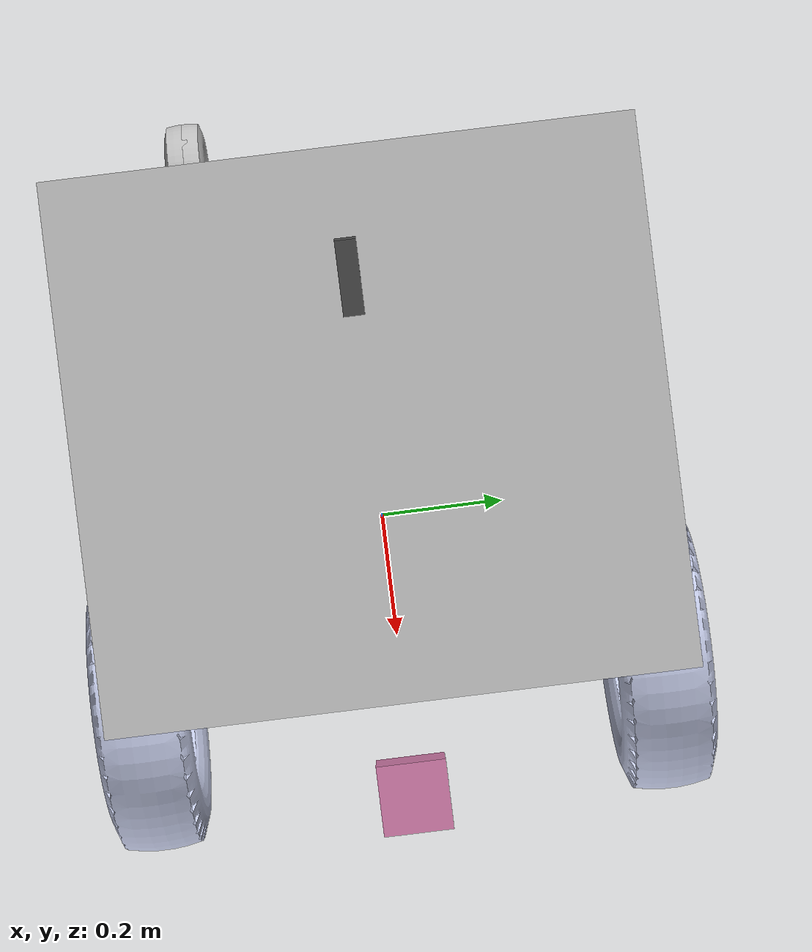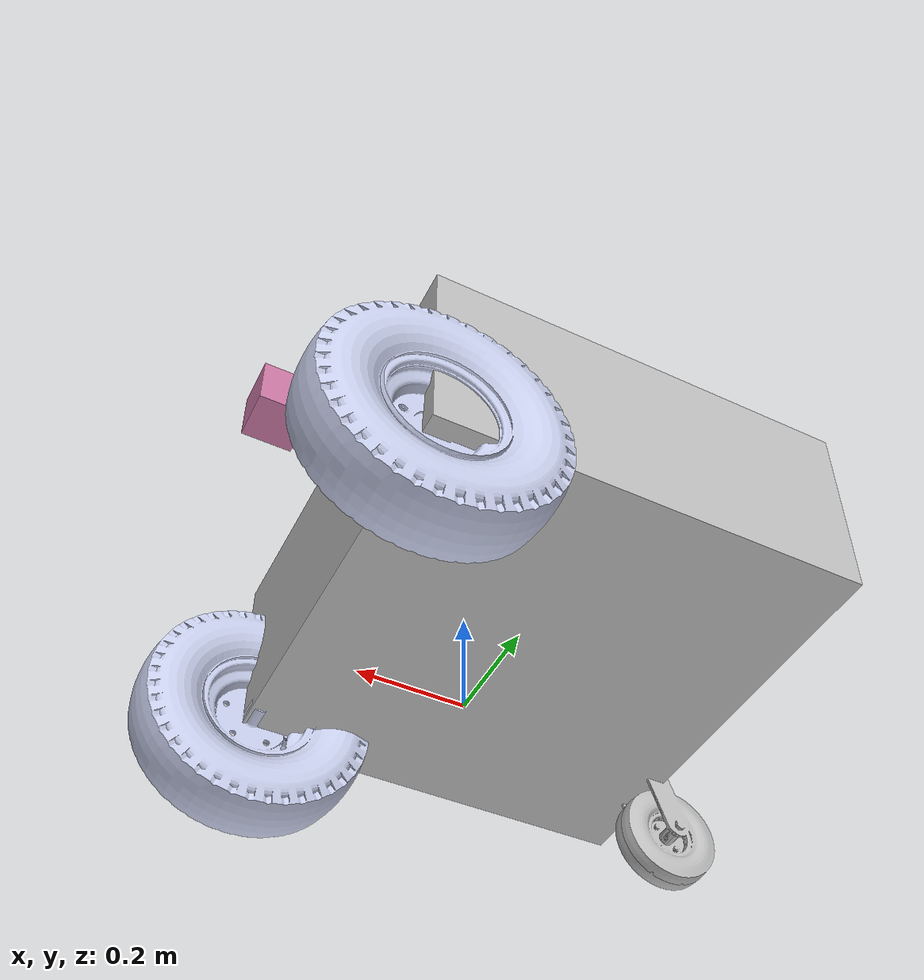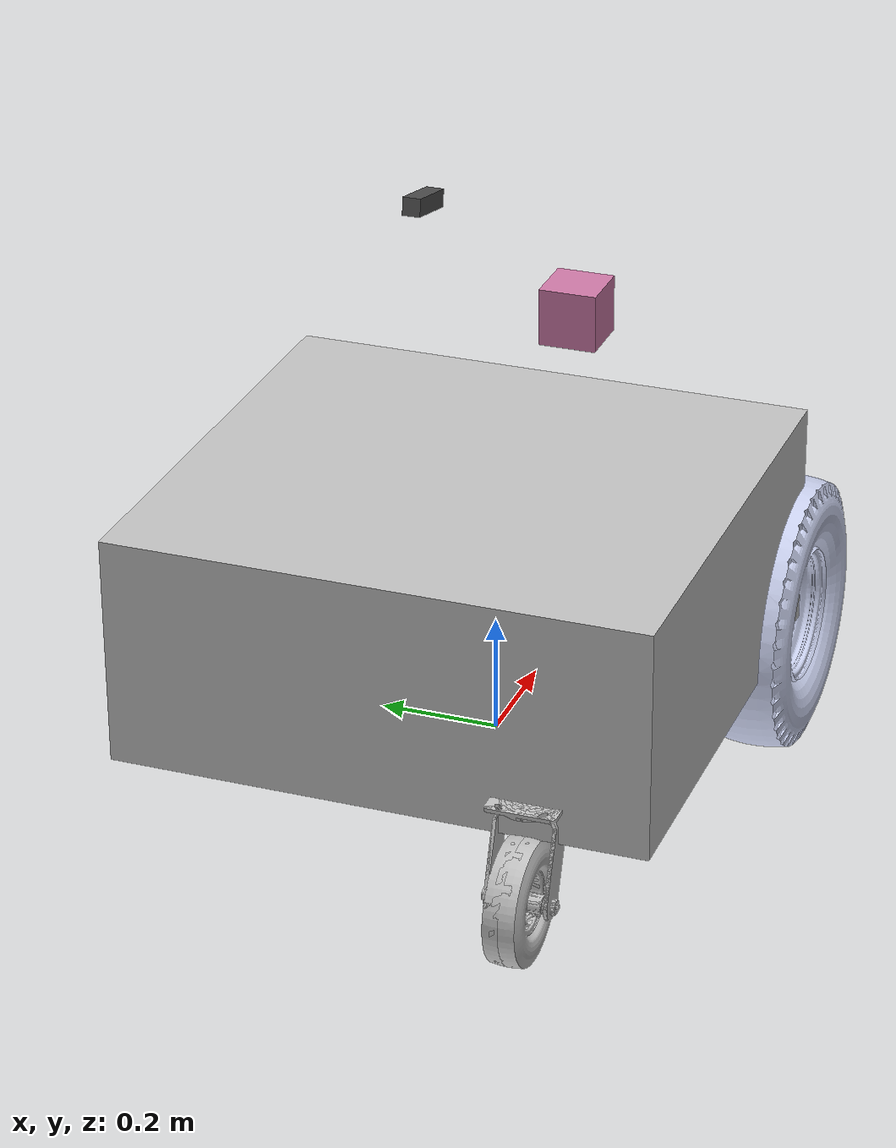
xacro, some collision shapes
<?xml version="1.0" encoding="utf-8"?>
<robot xmlns:xacro="http://www.ros.org/wiki/xacro" name="r3_robot">
  <!-- file:// + $(find ...) so Gazebo resolves visuals when spawning URDF (package:// is unreliable). -->
  <xacro:property name="mesh_dir" value="file://$(find orange_description)/URDF/meshes"/>
  <!-- Wheel geometry for diff_drive (meters); center-to-center along y, tire diameter -->
  <xacro:property name="wheel_sep" value="0.8105"/>
  <xacro:property name="wheel_diam" value="0.44"/>

  <link name="base_footprint"/>
  <joint name="base_joint" type="fixed">
    <parent link="base_footprint"/>
    <child link="base_link"/>
    <!-- Ground ~ wheel bottom; wheel z -0.074, r=0.22; raise base_link ~0.29 m above footprint -->
    <origin xyz="0 0 0.24" rpy="0 0 0"/>
  </joint>

  <link name="base_link">
    <inertial>
      <origin xyz="0.0374161775948693 -0.00127430901164387 0.0470608642145947" rpy="0 0 0"/>
      <mass value="81.1401446778268"/>
      <inertia ixx="0.728632085236706" ixy="1.32350754415025E-05" ixz="-0.0224859617907878"
        iyy="1.14289496966326" iyz="-7.48148338622692E-05" izz="1.53133782528775"/>
    </inertial>
    <visual>
      <origin xyz="0 0 0" rpy="0 0 0"/>
      <geometry>
        <mesh filename="${mesh_dir}/base_link.STL"/>
      </geometry>
      <material name="chassis_grey">
        <color rgba="0.752941176470588 0.752941176470588 0.752941176470588 1"/>
      </material>
    </visual>
    <collision>
      <origin xyz="-0.136 0 0.10" rpy="0 0 0"/>
      <geometry>
        <box size="0.82 0.88 0.38"/>
      </geometry>
    </collision>
  </link>

  <link name="wheel_right">
    <inertial>
      <origin xyz="1.798E-05 -0.003577 -1.798E-05" rpy="0 0 0"/>
      <mass value="6.0074"/>
      <inertia ixx="0.11314" ixy="-3.6258E-08" ixz="8.1856E-07" iyy="0.20566" iyz="3.6267E-08" izz="0.11314"/>
    </inertial>
    <visual>
      <origin xyz="0 0 0" rpy="0 0 0"/>
      <geometry>
        <mesh filename="${mesh_dir}/wheel_right.STL"/>
      </geometry>
      <material name="wheel_blue">
        <color rgba="0.79216 0.81961 0.93333 1"/>
      </material>
    </visual>
    <collision>
      <origin xyz="0 0 0" rpy="1.5707963267948966 0 0"/>
      <geometry>
        <cylinder radius="0.22" length="0.10"/>
      </geometry>
    </collision>
  </link>
  <joint name="rightWheel" type="continuous">
    <origin xyz="0.25591 0.40526 -0.07445" rpy="0 0 0"/>
    <parent link="base_link"/>
    <child link="wheel_right"/>
    <axis xyz="0 1 0"/>
    <limit effort="10" velocity="10"/>
    <dynamics damping="0.5" friction="0.5"/>
  </joint>

  <link name="wheel_left">
    <inertial>
      <origin xyz="-1.798E-05 0.003577 -1.798E-05" rpy="0 0 0"/>
      <mass value="6.0074"/>
      <inertia ixx="0.11314" ixy="-3.6258E-08" ixz="-8.1856E-07" iyy="0.20566" iyz="-3.6267E-08" izz="0.11314"/>
    </inertial>
    <visual>
      <origin xyz="0 0 0" rpy="0 0 0"/>
      <geometry>
        <mesh filename="${mesh_dir}/wheel_left.STL"/>
      </geometry>
      <material name="wheel_blue_l">
        <color rgba="0.79216 0.81961 0.93333 1"/>
      </material>
    </visual>
    <collision>
      <origin xyz="0 0 0" rpy="1.5707963267948966 0 0"/>
      <geometry>
        <cylinder radius="0.22" length="0.10"/>
      </geometry>
    </collision>
  </link>
  <joint name="leftWheel" type="continuous">
    <origin xyz="0.25591 -0.40525 -0.07445" rpy="0 0 0"/>
    <parent link="base_link"/>
    <child link="wheel_left"/>
    <axis xyz="0 -1 0"/>
    <limit effort="10" velocity="10"/>
    <dynamics damping="0.5" friction="0.5"/>
  </joint>

  <link name="right_caster">
    <inertial>
      <origin xyz="-0.039652 -5.8101E-05 -0.13418" rpy="0 0 0"/>
      <mass value="1.8501"/>
      <inertia ixx="0.0057433" ixy="2.8684E-08" ixz="-0.00012827" iyy="0.0096143" iyz="8.6762E-08" izz="0.0054708"/>
    </inertial>
    <visual>
      <origin xyz="0 0 0" rpy="0 0 0"/>
      <geometry>
        <mesh filename="${mesh_dir}/right_caster.STL"/>
      </geometry>
      <material name="caster_grey">
        <color rgba="0.75294 0.75294 0.75294 1"/>
      </material>
    </visual>
    <collision>
      <origin xyz="0 0 0" rpy="0 0 0"/>
      <geometry>
        <sphere radius="0.25"/>
      </geometry>
    </collision>
  </link>
  <joint name="rightCaster" type="continuous">
    <origin xyz="-0.52775 0.24612 -0.03635" rpy="0 0 0"/>
    <parent link="base_link"/>
    <child link="right_caster"/>
    <axis xyz="0 0 1"/>
    <limit effort="10" velocity="10"/>
    <dynamics damping="0.1" friction="0.1"/>
  </joint>

  <link name="left_caster">
    <inertial>
      <origin xyz="-0.039652 -5.8101E-05 -0.13418" rpy="0 0 0"/>
      <mass value="1.8501"/>
      <inertia ixx="0.0057433" ixy="2.8684E-08" ixz="-0.00012827" iyy="0.0096143" iyz="8.6762E-08" izz="0.0054708"/>
    </inertial>
    <visual>
      <origin xyz="0 0 0" rpy="0 0 0"/>
      <geometry>
        <mesh filename="${mesh_dir}/left_caster.STL"/>
      </geometry>
      <material name="caster_grey_l">
        <color rgba="0.75294 0.75294 0.75294 1"/>
      </material>
    </visual>
    <collision>
      <origin xyz="0 0 0" rpy="0 0 0"/>
      <geometry>
        <sphere radius="0.25"/>
      </geometry>
    </collision>
  </link>
  <joint name="leftCaster" type="continuous">
    <origin xyz="-0.52775 -0.24612 -0.03635" rpy="0 0 0"/>
    <parent link="base_link"/>
    <child link="left_caster"/>
    <axis xyz="0 0 1"/>
    <limit effort="10" velocity="10"/>
    <dynamics damping="0.1" friction="0.1"/>
  </joint>

  <!-- Same sensor macros as orange_robot_simulation.xacro; tune *origin* for R3 CAD. -->
  <xacro:include filename="$(find orange_description)/xacro/sensors/hokuyo.xacro"/>
  <xacro:include filename="$(find orange_description)/xacro/sensors/imu.xacro"/>
  <xacro:include filename="$(find orange_description)/xacro/sensors/oak_d_pro.xacro"/>

  <xacro:sensor_hokuyo name="hokuyo" parent="base_link" min_angle="-1.22" max_angle="1.22" samples="720">
    <origin xyz="0.40 0 0.35" rpy="0 0 0"/>
  </xacro:sensor_hokuyo>
  <xacro:sensor_imu name="imu" parent="base_link" size="0.05 0.05 0.05">
    <origin xyz="-0.12 0 0.12" rpy="0 0 0"/>
  </xacro:sensor_imu>
  <xacro:oak_d_pro name="oak" parent="base_link">
    <!-- Mounted on the front-right pole, pitched down about 20 degrees -->
    <origin xyz="-0.31 0.0 0.81" rpy="0 0.20 0"/>
  </xacro:oak_d_pro>

  <!-- Wheel / caster friction (matches orange_robot_simulation.gazebo pattern) -->
  <gazebo reference="wheel_left">
    <mu1>5.0</mu1>
    <mu2>5.0</mu2>
    <kp>1000000.0</kp>
    <kd>100.0</kd>
    <minDepth>0.001</minDepth>
    <maxVel>1.0</maxVel>
  </gazebo>
  <gazebo reference="wheel_right">
    <mu1>5.0</mu1>
    <mu2>5.0</mu2>
    <kp>1000000.0</kp>
    <kd>100.0</kd>
    <minDepth>0.001</minDepth>
    <maxVel>1.0</maxVel>
  </gazebo>
  <gazebo reference="left_caster">
    <mu1>0.0</mu1>
    <mu2>0.0</mu2>
  </gazebo>
  <gazebo reference="right_caster">
    <mu1>0.0</mu1>
    <mu2>0.0</mu2>
  </gazebo>

  <gazebo>
    <plugin name="diff_drive_controller" filename="libgazebo_ros_diff_drive.so">
      <update_rate>30</update_rate>
      <left_joint>leftWheel</left_joint>
      <right_joint>rightWheel</right_joint>
      <wheel_separation>${wheel_sep}</wheel_separation>
      <wheel_diameter>${wheel_diam}</wheel_diameter>
      <max_wheel_torque>200</max_wheel_torque>
      <max_wheel_acceleration>2.0</max_wheel_acceleration>
      <command_topic>cmd_vel</command_topic>
      <publish_odom>true</publish_odom>
      <publish_odom_tf>false</publish_odom_tf>
      <publish_wheel_tf>true</publish_wheel_tf>
      <odometry_topic>odom</odometry_topic>
      <odometry_frame>odom</odometry_frame>
      <robot_base_frame>base_footprint</robot_base_frame>
    </plugin>
    <plugin name="joint_state_publisher" filename="libgazebo_ros_joint_state_publisher.so">
      <ros>
        <remapping>~/out:=joint_states</remapping>
      </ros>
      <update_rate>30</update_rate>
      <joint_name>leftWheel</joint_name>
      <joint_name>rightWheel</joint_name>
      <joint_name>leftCaster</joint_name>
      <joint_name>rightCaster</joint_name>
    </plugin>
  </gazebo>
</robot>

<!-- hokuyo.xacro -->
<robot xmlns:xacro="http://ros.org/wiki/xacro" xmlns:controller="http://playerstage.sourceforge.net/gazebo/xmlschema/#controller" xmlns:interface="http://playerstage.sourceforge.net/gazebo/xmlschema/#interface" name="sensor_hokuyo">
  <xacro:macro name="sensor_hokuyo" params="name parent *origin min_angle max_angle samples">
    <joint name="${name}_joint" type="fixed">
      <xacro:insert_block name="origin"/>
      <axis xyz="0 1 0"/>
      <parent link="${parent}"/>
      <child link="${name}_link"/>
    </joint>
    <link name="${name}_link">
      <visual>
        <origin xyz="0 0 0" rpy="0 0 0"/>
        <geometry>
          <mesh filename="file://$(find orange_description)/meshes/hokuyo.dae"/>
        </geometry>
      </visual>
      <collision>
        <origin xyz="0 0 0" rpy="0 0 0"/>
        <geometry>
          <box size="0.1 0.1 0.1"/>
        </geometry>
      </collision>
      <inertial>
        <mass value="0.0001"/>
        <origin xyz="0 0 0" rpy="0 0 0"/>
        <inertia ixx="0.0001" ixy="0" ixz="0" iyy="0.0001" iyz="0" izz="0.0001"/>
      </inertial>
    </link>
    <gazebo reference="${name}_link">
      <sensor type="ray" name="head_hokuyo_sensor">
        <pose>0 0 0 0 0 0</pose>
        <visualize>false</visualize>
        <update_rate>20</update_rate>
        <ray>
          <scan>
            <horizontal>
              <resolution>1</resolution>
              <samples>${samples}</samples>
              <min_angle>${min_angle}</min_angle>
              <max_angle>${max_angle}</max_angle>
            </horizontal>
          </scan>
          <range>
            <min>0.10</min>
            <max>30.0</max>
            <resolution>0.01</resolution>
          </range>
          <noise>
            <type>gaussian</type>
            <mean>0.0</mean>
            <stddev>0.01</stddev>
          </noise>
        </ray>
        <plugin name="gazebo_ros_hokuyo_controller" filename="libgazebo_ros_ray_sensor.so">
          <ros>
            <remapping>~/out:=hokuyo_scan</remapping>
          </ros>
          <output_type>sensor_msgs/LaserScan</output_type>
          <frame_name>${name}_link</frame_name>
        </plugin>
      </sensor>
    </gazebo>
  </xacro:macro>
</robot>

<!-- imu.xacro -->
<robot xmlns:xacro="http://ros.org/wiki/xacro" xmlns:controller="http://playerstage.sourceforge.net/gazebo/xmlschema/#controller" xmlns:interface="http://playerstage.sourceforge.net/gazebo/xmlschema/#interface" name="sensor_imu">
  <xacro:macro name="sensor_imu" params="name parent *origin size">
    <joint name="${name}_joint" type="fixed">
      <xacro:insert_block name="origin"/>
      <axis xyz="1 0 0"/>
      <parent link="${parent}"/>
      <child link="${name}_link"/>
    </joint>
    <link name="${name}_link">
      <visual>
        <origin rpy="0 0 0" xyz="0 0 0"/>
        <geometry>
          <box size="${size}"/>
        </geometry>
      </visual>
      <collision>
        <origin rpy="0 0 0" xyz="0 0 0"/>
        <geometry>
          <box size="${size}"/>
        </geometry>
      </collision>
      <inertial>
        <mass value="0.001"/>
        <origin rpy="0 0 0" xyz="0 0 0"/>
        <inertia ixx="0.0001" ixy="0" ixz="0" iyy="0.000001" iyz="0" izz="0.0001"/>
      </inertial>
    </link>
    <gazebo reference="${name}_link">
      <sensor type="imu" name="imu">
        <always_on>true</always_on>
        <plugin name="gazebo_ros_imu_controller" filename="libgazebo_ros_imu_sensor.so">
          <ros>
            <remapping>~/out:=imu</remapping>
          </ros>
          <frame_name>${name}_link</frame_name>
          <gaussian_noise>0.001</gaussian_noise>
          <xyzOffset>0 0 0</xyzOffset>
          <rpyOffset>0 0 0</rpyOffset>
        </plugin>
      </sensor>
    </gazebo>
  </xacro:macro>
</robot>

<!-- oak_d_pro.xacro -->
<robot xmlns:xacro="http://www.ros.org/wiki/xacro">
  <!--
  OAK-D Pro Camera Sensor
  Emulates Luxonis OAK-D Pro with RGB camera and stereo depth
  -->

  <xacro:macro name="oak_d_pro" params="name parent *origin">

    <!-- OAK-D Pro Base Link -->
    <joint name="${name}_joint" type="fixed">
      <xacro:insert_block name="origin"/>
      <parent link="${parent}"/>
      <child link="${name}_link"/>
    </joint>

    <link name="${name}_link">
      <visual>
        <origin xyz="0 0 0" rpy="0 0 0"/>
        <geometry>
          <box size="0.097 0.0275 0.0275"/>
        </geometry>
        <material name="oak_gcameraray">
          <color rgba="0.3 0.3 0.3 1.0"/>
        </material>
      </visual>
      <collision>
        <origin xyz="0 0 0" rpy="0 0 0"/>
        <geometry>
          <box size="0.097 0.0275 0.0275"/>
        </geometry>
      </collision>
      <inertial>
        <mass value="0.06"/>
        <origin xyz="0 0 0" rpy="0 0 0"/>
        <inertia ixx="0.00001" ixy="0.0" ixz="0.0" iyy="0.00001" iyz="0.0" izz="0.00001"/>
      </inertial>
    </link>

    <!-- RGB Camera Link (Center) -->
    <joint name="${name}_rgb_joint" type="fixed">
      <origin xyz="0.0 0.0 0.0" rpy="0 0 0"/>
      <parent link="${name}_link"/>
      <child link="${name}_rgb_camera_frame"/>
    </joint>

    <link name="${name}_rgb_camera_frame"/>

    <!-- RGB Camera Optical Frame -->
    <joint name="${name}_rgb_optical_joint" type="fixed">
      <origin xyz="0 0 0" rpy="${-pi/2} 0 ${-pi/2}"/>
      <parent link="${name}_rgb_camera_frame"/>
      <child link="${name}_rgb_camera_optical_frame"/>
    </joint>

    <link name="${name}_rgb_camera_optical_frame"/>

    <!-- Left Stereo Camera -->
    <joint name="${name}_left_joint" type="fixed">
      <origin xyz="0.0 0.0375 0.0" rpy="0 0 0"/>
      <parent link="${name}_link"/>
      <child link="${name}_left_camera_frame"/>
    </joint>

    <link name="${name}_left_camera_frame"/>

    <joint name="${name}_left_optical_joint" type="fixed">
      <origin xyz="0 0 0" rpy="${-pi/2} 0 ${-pi/2}"/>
      <parent link="${name}_left_camera_frame"/>
      <child link="${name}_left_camera_optical_frame"/>
    </joint>

    <link name="${name}_left_camera_optical_frame"/>

    <!-- Right Stereo Camera -->
    <joint name="${name}_right_joint" type="fixed">
      <origin xyz="0.0 -0.0375 0.0" rpy="0 0 0"/>
      <parent link="${name}_link"/>
      <child link="${name}_right_camera_frame"/>
    </joint>

    <link name="${name}_right_camera_frame"/>

    <joint name="${name}_right_optical_joint" type="fixed">
      <origin xyz="0 0 0" rpy="${-pi/2} 0 ${-pi/2}"/>
      <parent link="${name}_right_camera_frame"/>
      <child link="${name}_right_camera_optical_frame"/>
    </joint>

    <link name="${name}_right_camera_optical_frame"/>

    <!-- Gazebo RGB Camera Plugin -->
    <gazebo reference="${name}_rgb_camera_frame">
      <sensor type="camera" name="${name}_rgb_camera">
        <update_rate>30.0</update_rate>
        <camera name="${name}_rgb">
          <horizontal_fov>1.2217</horizontal_fov>
          <image>
            <!-- Reduced resolution for smoother performance (was 1920x1080) -->
            <width>640</width>
            <height>480</height>
            <format>R8G8B8</format>
          </image>
          <clip>
            <near>0.1</near>
            <far>100</far>
          </clip>
          <noise>
            <type>gaussian</type>
            <mean>0.0</mean>
            <stddev>0.007</stddev>
          </noise>
        </camera>
        <plugin name="${name}_rgb_camera_controller" filename="libgazebo_ros_camera.so">
          <frame_name>${name}_rgb_camera_optical_frame</frame_name>
          <camera_name>oak/rgb</camera_name>
          <image_topic_name>image_raw</image_topic_name>
          <camera_info_topic_name>camera_info</camera_info_topic_name>
          <hack_baseline>0.07</hack_baseline>
        </plugin>
      </sensor>
    </gazebo>

    <!-- Gazebo Depth Camera Plugin (Stereo as RGB-D) -->
    <gazebo reference="${name}_left_camera_frame">
      <sensor type="depth" name="${name}_depth_camera">
        <update_rate>30.0</update_rate>
        <camera name="${name}_depth">
          <horizontal_fov>1.2217</horizontal_fov>
          <image>
            <width>640</width>
            <height>400</height>
            <format>R8G8B8</format>
          </image>
          <clip>
            <near>0.2</near>
            <far>20.0</far>
          </clip>
          <noise>
            <type>gaussian</type>
            <mean>0.0</mean>
            <stddev>0.01</stddev>
          </noise>
        </camera>
        <plugin name="${name}_depth_camera_controller" filename="libgazebo_ros_camera.so">
          <frame_name>${name}_left_camera_optical_frame</frame_name>
          <camera_name>oak/stereo</camera_name>
          <image_topic_name>image_raw</image_topic_name>
          <camera_info_topic_name>camera_info</camera_info_topic_name>
          <depth_image_topic_name>depth/image_raw</depth_image_topic_name>
          <depth_image_camera_info_topic_name>depth/camera_info</depth_image_camera_info_topic_name>
          <point_cloud_topic_name>points</point_cloud_topic_name>
          <point_cloud_cutoff>0.2</point_cloud_cutoff>
          <point_cloud_cutoff_max>20.0</point_cloud_cutoff_max>
        </plugin>
      </sensor>
    </gazebo>

  </xacro:macro>
</robot>
